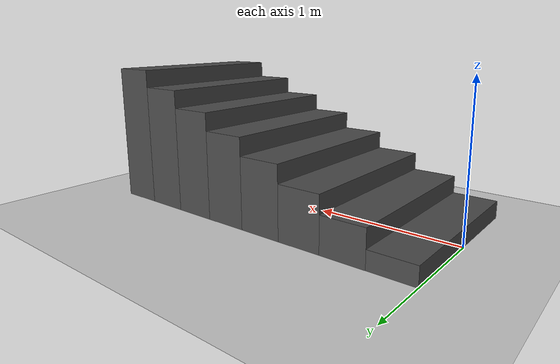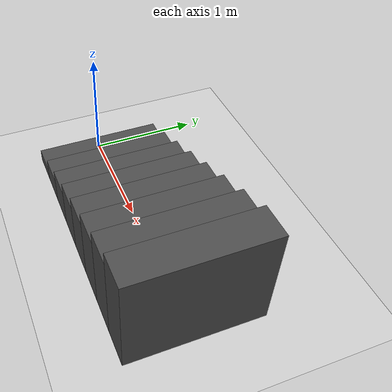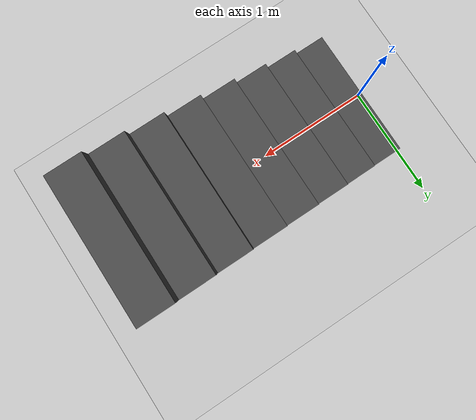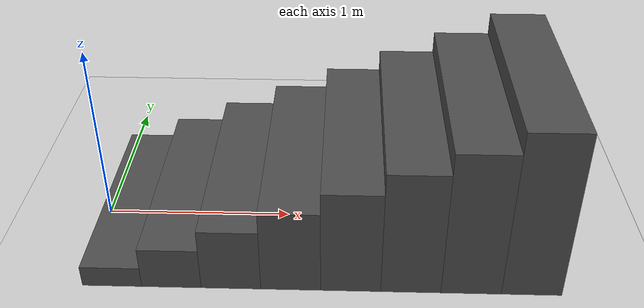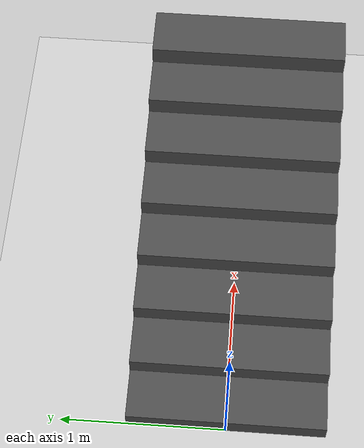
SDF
<?xml version="1.0" ?>
<!-- 由 omni_world.py 自动生成: scene=stairs seed=None -->
<sdf version="1.5">
  <world name="stairs">
    <physics type="ode">
      <type>world</type>
      <max_step_size>0.001</max_step_size>
      <real_time_update_rate>1000</real_time_update_rate>
      <iters>500</iters>
    </physics>
    <include><uri>model://sun</uri></include>
    <include><uri>model://ground_plane</uri></include>
    <model name="stair_0">
      <static>true</static>
      <pose>0.150 0.000 0.060 0.0000 0.0000 0.0000</pose>
      <link name="link">
        <collision name="collision">
          <geometry><box><size>0.300 1.200 0.120</size></box></geometry>
          <surface><friction><ode><mu>1.0</mu><mu2>1.0</mu2></ode></friction></surface>
        </collision>
        <visual name="visual">
          <geometry><box><size>0.300 1.200 0.120</size></box></geometry>
          <material><script><uri>file://media/materials/scripts/gazebo.material</uri>
            <name>Gazebo/DarkGrey</name></script></material>
        </visual>
      </link>
    </model>
    <model name="stair_1">
      <static>true</static>
      <pose>0.450 0.000 0.120 0.0000 0.0000 0.0000</pose>
      <link name="link">
        <collision name="collision">
          <geometry><box><size>0.300 1.200 0.240</size></box></geometry>
          <surface><friction><ode><mu>1.0</mu><mu2>1.0</mu2></ode></friction></surface>
        </collision>
        <visual name="visual">
          <geometry><box><size>0.300 1.200 0.240</size></box></geometry>
          <material><script><uri>file://media/materials/scripts/gazebo.material</uri>
            <name>Gazebo/DarkGrey</name></script></material>
        </visual>
      </link>
    </model>
    <model name="stair_2">
      <static>true</static>
      <pose>0.750 0.000 0.180 0.0000 0.0000 0.0000</pose>
      <link name="link">
        <collision name="collision">
          <geometry><box><size>0.300 1.200 0.360</size></box></geometry>
          <surface><friction><ode><mu>1.0</mu><mu2>1.0</mu2></ode></friction></surface>
        </collision>
        <visual name="visual">
          <geometry><box><size>0.300 1.200 0.360</size></box></geometry>
          <material><script><uri>file://media/materials/scripts/gazebo.material</uri>
            <name>Gazebo/DarkGrey</name></script></material>
        </visual>
      </link>
    </model>
    <model name="stair_3">
      <static>true</static>
      <pose>1.050 0.000 0.240 0.0000 0.0000 0.0000</pose>
      <link name="link">
        <collision name="collision">
          <geometry><box><size>0.300 1.200 0.480</size></box></geometry>
          <surface><friction><ode><mu>1.0</mu><mu2>1.0</mu2></ode></friction></surface>
        </collision>
        <visual name="visual">
          <geometry><box><size>0.300 1.200 0.480</size></box></geometry>
          <material><script><uri>file://media/materials/scripts/gazebo.material</uri>
            <name>Gazebo/DarkGrey</name></script></material>
        </visual>
      </link>
    </model>
    <model name="stair_4">
      <static>true</static>
      <pose>1.350 0.000 0.300 0.0000 0.0000 0.0000</pose>
      <link name="link">
        <collision name="collision">
          <geometry><box><size>0.300 1.200 0.600</size></box></geometry>
          <surface><friction><ode><mu>1.0</mu><mu2>1.0</mu2></ode></friction></surface>
        </collision>
        <visual name="visual">
          <geometry><box><size>0.300 1.200 0.600</size></box></geometry>
          <material><script><uri>file://media/materials/scripts/gazebo.material</uri>
            <name>Gazebo/DarkGrey</name></script></material>
        </visual>
      </link>
    </model>
    <model name="stair_5">
      <static>true</static>
      <pose>1.650 0.000 0.360 0.0000 0.0000 0.0000</pose>
      <link name="link">
        <collision name="collision">
          <geometry><box><size>0.300 1.200 0.720</size></box></geometry>
          <surface><friction><ode><mu>1.0</mu><mu2>1.0</mu2></ode></friction></surface>
        </collision>
        <visual name="visual">
          <geometry><box><size>0.300 1.200 0.720</size></box></geometry>
          <material><script><uri>file://media/materials/scripts/gazebo.material</uri>
            <name>Gazebo/DarkGrey</name></script></material>
        </visual>
      </link>
    </model>
    <model name="stair_6">
      <static>true</static>
      <pose>1.950 0.000 0.420 0.0000 0.0000 0.0000</pose>
      <link name="link">
        <collision name="collision">
          <geometry><box><size>0.300 1.200 0.840</size></box></geometry>
          <surface><friction><ode><mu>1.0</mu><mu2>1.0</mu2></ode></friction></surface>
        </collision>
        <visual name="visual">
          <geometry><box><size>0.300 1.200 0.840</size></box></geometry>
          <material><script><uri>file://media/materials/scripts/gazebo.material</uri>
            <name>Gazebo/DarkGrey</name></script></material>
        </visual>
      </link>
    </model>
    <model name="stair_7">
      <static>true</static>
      <pose>2.250 0.000 0.480 0.0000 0.0000 0.0000</pose>
      <link name="link">
        <collision name="collision">
          <geometry><box><size>0.300 1.200 0.960</size></box></geometry>
          <surface><friction><ode><mu>1.0</mu><mu2>1.0</mu2></ode></friction></surface>
        </collision>
        <visual name="visual">
          <geometry><box><size>0.300 1.200 0.960</size></box></geometry>
          <material><script><uri>file://media/materials/scripts/gazebo.material</uri>
            <name>Gazebo/DarkGrey</name></script></material>
        </visual>
      </link>
    </model>

  </world>
</sdf>
